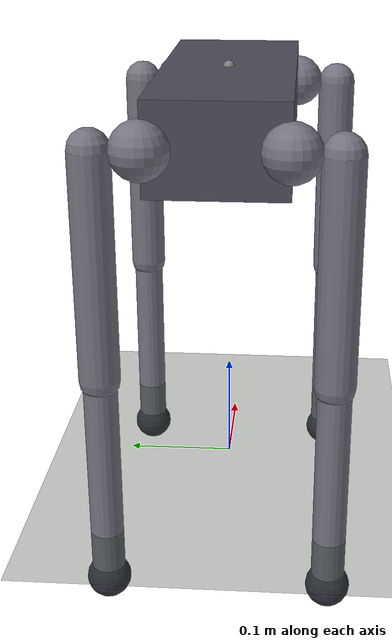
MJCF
<mujoco model="test_quadruped">
  <compiler angle="radian" autolimits="true"/>
  <option timestep="0.005" cone="elliptic" impratio="100"/>

  <default>
    <default class="quadruped">
      <geom friction="0.8 0.02 0.01" condim="3" margin="0.001"/>
      <joint damping="2.0" armature="0.01" frictionloss="0.2"/>
      <motor ctrlrange="-25 25"/>
      <default class="abd_joint">
        <joint axis="1 0 0" range="-0.8 0.8"/>
      </default>
      <default class="hip_joint">
        <joint axis="0 1 0" range="-1.5 3.5"/>
      </default>
      <default class="knee_joint">
        <joint axis="0 1 0" range="-2.7 -0.5"/>
        <motor ctrlrange="-45 45"/>
      </default>
      <default class="body_geom">
        <geom rgba="0.3 0.3 0.35 1"/>
      </default>
      <default class="leg_geom">
        <geom rgba="0.45 0.45 0.5 1"/>
      </default>
      <default class="foot_geom">
        <geom rgba="0.2 0.2 0.25 1" size="0.02" condim="6"
              solimp="0.015 1 0.02" priority="1"
              friction="0.8 0.02 0.01"/>
      </default>
    </default>
  </default>

  <asset>
    <texture name="grid" type="2d" builtin="checker" rgb1="0.1 0.15 0.1" rgb2="0.15 0.2 0.15" width="512" height="512"/>
    <material name="grid_mat" texture="grid" texrepeat="8 8" reflectance="0.1"/>
  </asset>

  <worldbody>
    <light pos="0 0 3" dir="0 0 -1" diffuse="0.8 0.8 0.8"/>
    <geom name="floor" type="plane" size="10 10 0.1" material="grid_mat" conaffinity="1" condim="6"/>

    <body name="base" pos="0 0 0.35" childclass="quadruped">
      <inertial pos="0 0 0" mass="7.0" diaginertia="0.05 0.12 0.1"/>
      <freejoint name="root"/>
      <geom name="torso" type="box" size="0.15 0.06 0.04" class="body_geom"/>
      <site name="imu" pos="0 0 0.04"/>

      <!-- Front Left Leg -->
      <body name="FL_hip" pos="0.15 0.06 0">
        <inertial pos="0 0.02 0" mass="0.5" diaginertia="0.001 0.001 0.0005"/>
        <joint name="FL_hip_joint" class="abd_joint"/>
        <geom name="FL_hip_geom" type="sphere" size="0.025" class="leg_geom"/>
        <body name="FL_thigh" pos="0 0.04 0">
          <inertial pos="0 0 -0.1" mass="0.8" diaginertia="0.003 0.003 0.0005"/>
          <joint name="FL_thigh_joint" class="hip_joint"/>
          <geom name="FL_thigh_geom" type="capsule" fromto="0 0 0 0 0 -0.2" size="0.018" class="leg_geom"/>
          <body name="FL_calf" pos="0 0 -0.2">
            <inertial pos="0 0 -0.1" mass="0.3" diaginertia="0.001 0.001 0.0002"/>
            <joint name="FL_calf_joint" class="knee_joint"/>
            <geom name="FL_calf_geom" type="capsule" fromto="0 0 0 0 0 -0.2" size="0.015" class="leg_geom"/>
            <geom name="FL_foot" type="sphere" pos="0 0 -0.2" class="foot_geom"/>
          </body>
        </body>
      </body>

      <!-- Front Right Leg -->
      <body name="FR_hip" pos="0.15 -0.06 0">
        <inertial pos="0 -0.02 0" mass="0.5" diaginertia="0.001 0.001 0.0005"/>
        <joint name="FR_hip_joint" class="abd_joint"/>
        <geom name="FR_hip_geom" type="sphere" size="0.025" class="leg_geom"/>
        <body name="FR_thigh" pos="0 -0.04 0">
          <inertial pos="0 0 -0.1" mass="0.8" diaginertia="0.003 0.003 0.0005"/>
          <joint name="FR_thigh_joint" class="hip_joint"/>
          <geom name="FR_thigh_geom" type="capsule" fromto="0 0 0 0 0 -0.2" size="0.018" class="leg_geom"/>
          <body name="FR_calf" pos="0 0 -0.2">
            <inertial pos="0 0 -0.1" mass="0.3" diaginertia="0.001 0.001 0.0002"/>
            <joint name="FR_calf_joint" class="knee_joint"/>
            <geom name="FR_calf_geom" type="capsule" fromto="0 0 0 0 0 -0.2" size="0.015" class="leg_geom"/>
            <geom name="FR_foot" type="sphere" pos="0 0 -0.2" class="foot_geom"/>
          </body>
        </body>
      </body>

      <!-- Rear Left Leg -->
      <body name="RL_hip" pos="-0.15 0.06 0">
        <inertial pos="0 0.02 0" mass="0.5" diaginertia="0.001 0.001 0.0005"/>
        <joint name="RL_hip_joint" class="abd_joint"/>
        <geom name="RL_hip_geom" type="sphere" size="0.025" class="leg_geom"/>
        <body name="RL_thigh" pos="0 0.04 0">
          <inertial pos="0 0 -0.1" mass="0.8" diaginertia="0.003 0.003 0.0005"/>
          <joint name="RL_thigh_joint" class="hip_joint"/>
          <geom name="RL_thigh_geom" type="capsule" fromto="0 0 0 0 0 -0.2" size="0.018" class="leg_geom"/>
          <body name="RL_calf" pos="0 0 -0.2">
            <inertial pos="0 0 -0.1" mass="0.3" diaginertia="0.001 0.001 0.0002"/>
            <joint name="RL_calf_joint" class="knee_joint"/>
            <geom name="RL_calf_geom" type="capsule" fromto="0 0 0 0 0 -0.2" size="0.015" class="leg_geom"/>
            <geom name="RL_foot" type="sphere" pos="0 0 -0.2" class="foot_geom"/>
          </body>
        </body>
      </body>

      <!-- Rear Right Leg -->
      <body name="RR_hip" pos="-0.15 -0.06 0">
        <inertial pos="0 -0.02 0" mass="0.5" diaginertia="0.001 0.001 0.0005"/>
        <joint name="RR_hip_joint" class="abd_joint"/>
        <geom name="RR_hip_geom" type="sphere" size="0.025" class="leg_geom"/>
        <body name="RR_thigh" pos="0 -0.04 0">
          <inertial pos="0 0 -0.1" mass="0.8" diaginertia="0.003 0.003 0.0005"/>
          <joint name="RR_thigh_joint" class="hip_joint"/>
          <geom name="RR_thigh_geom" type="capsule" fromto="0 0 0 0 0 -0.2" size="0.018" class="leg_geom"/>
          <body name="RR_calf" pos="0 0 -0.2">
            <inertial pos="0 0 -0.1" mass="0.3" diaginertia="0.001 0.001 0.0002"/>
            <joint name="RR_calf_joint" class="knee_joint"/>
            <geom name="RR_calf_geom" type="capsule" fromto="0 0 0 0 0 -0.2" size="0.015" class="leg_geom"/>
            <geom name="RR_foot" type="sphere" pos="0 0 -0.2" class="foot_geom"/>
          </body>
        </body>
      </body>
    </body>
  </worldbody>

  <actuator>
    <motor name="FL_hip" joint="FL_hip_joint" class="quadruped"/>
    <motor name="FL_thigh" joint="FL_thigh_joint" class="quadruped"/>
    <motor name="FL_calf" joint="FL_calf_joint" class="knee_joint"/>
    <motor name="FR_hip" joint="FR_hip_joint" class="quadruped"/>
    <motor name="FR_thigh" joint="FR_thigh_joint" class="quadruped"/>
    <motor name="FR_calf" joint="FR_calf_joint" class="knee_joint"/>
    <motor name="RL_hip" joint="RL_hip_joint" class="quadruped"/>
    <motor name="RL_thigh" joint="RL_thigh_joint" class="quadruped"/>
    <motor name="RL_calf" joint="RL_calf_joint" class="knee_joint"/>
    <motor name="RR_hip" joint="RR_hip_joint" class="quadruped"/>
    <motor name="RR_thigh" joint="RR_thigh_joint" class="quadruped"/>
    <motor name="RR_calf" joint="RR_calf_joint" class="knee_joint"/>
  </actuator>

  <keyframe>
    <key name="home" qpos="0 0 0.35 1 0 0 0 0 0.6 -1.2 0 0.6 -1.2 0 0.6 -1.2 0 0.6 -1.2"/>
  </keyframe>
</mujoco>
